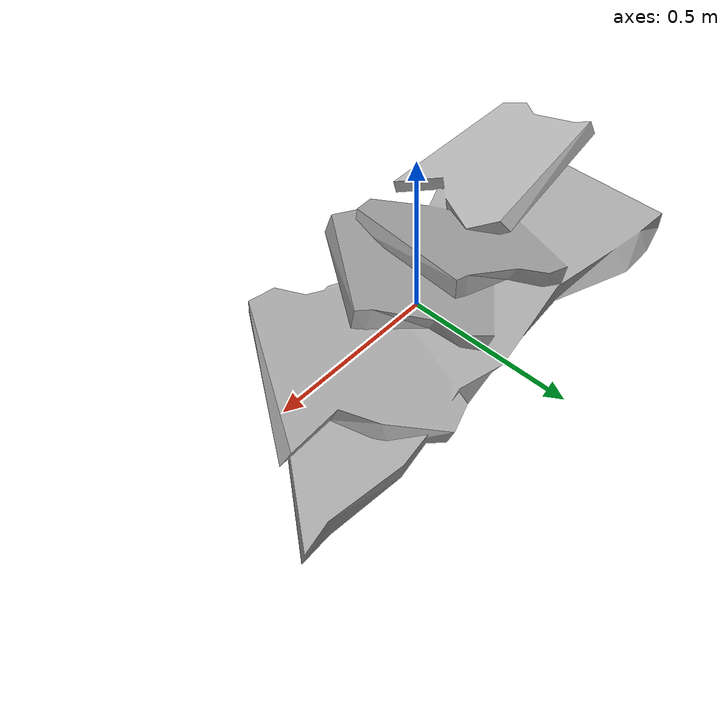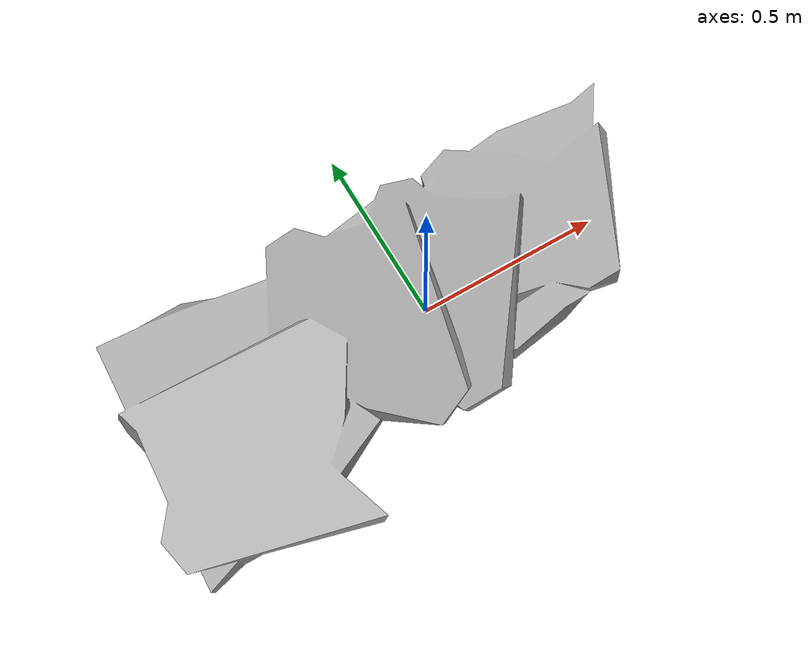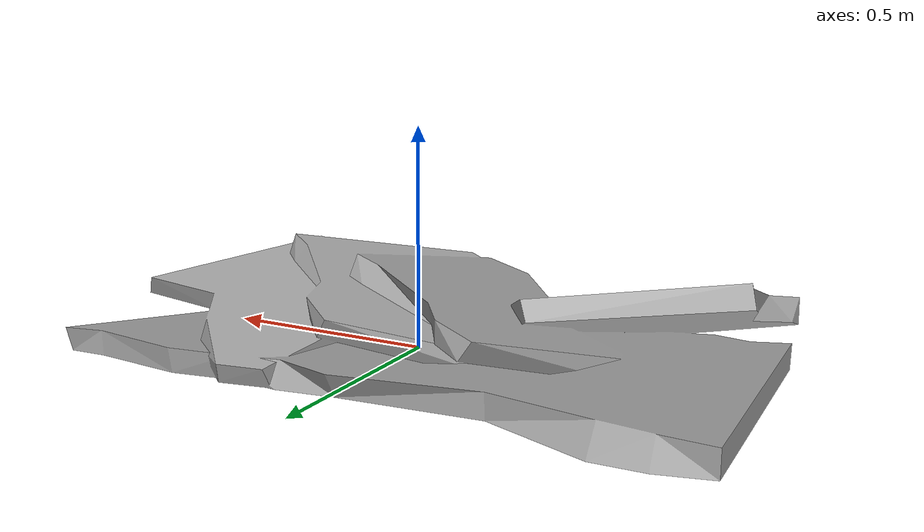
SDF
<?xml version="1.0" ?>
<sdf version="1.6">

  <model name="ice">
      <pose>0 0 0  0 0 0</pose>
      <static>false</static>
      <link name="ice">

        <inertial>
          <mass>100</mass>
        </inertial>

        <collision name="collision">
          <geometry>
            <box>
              <size>1.5 0.9 0.3</size>
            </box>
          </geometry>
        </collision>

        <visual name="visual">
          <geometry>
            <mesh>
              <uri>model://landscape/ice/meshes/ice.dae</uri>
            </mesh>
          </geometry>
          <material>
            <script>
              <uri>model://landscape/ice/materials/scripts/ice.material</uri>
              <name>ice</name>
            </script>
          </material>
        </visual>
      </link>
    </model>
</sdf>
